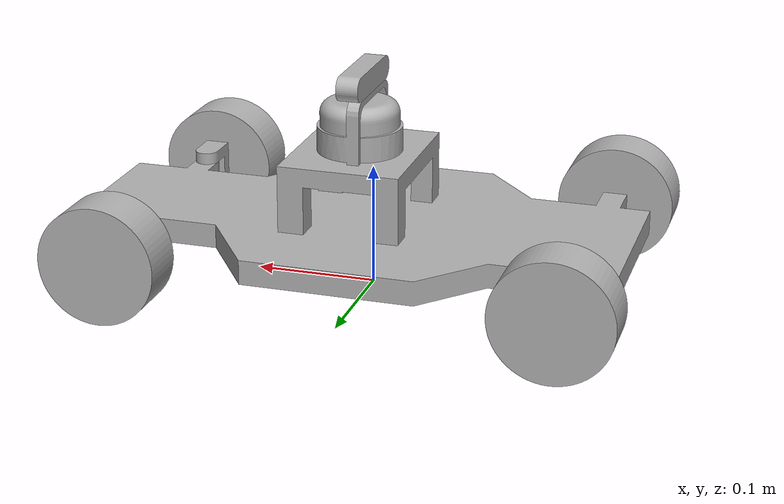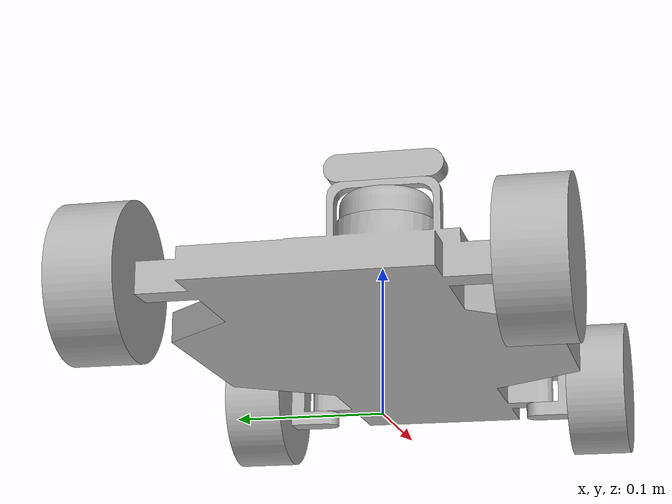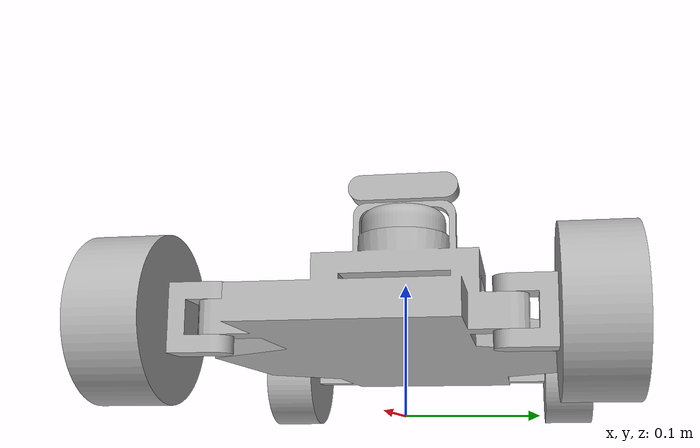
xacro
<?xml version="1.0" ?>
<robot name="mxcarkit" xmlns:xacro="http://www.ros.org/wiki/xacro">

<xacro:include filename="$(find mxcarkit_description)/urdf/materials.xacro" />
<xacro:include filename="$(find mxcarkit_description)/urdf/mxcarkit.trans" />
<xacro:include filename="$(find mxcarkit_description)/urdf/mxcarkit.gazebo" />

<link name="base_footprint"/>

<joint name="footprint_joint" type="fixed">
  <parent link="base_footprint"/>
  <child link="base_link"/>
</joint>

<link name="base_link">
  <inertial>
    <origin xyz="0.0015961496453554915 0.0 0.058207406556949434" rpy="0 0 0"/>
    <mass value="2.1464476957000236"/>
    <inertia ixx="0.008079" iyy="0.026184" izz="0.031905" ixy="0.0" iyz="0.0" ixz="-0.000205"/>
  </inertial>
  <visual>
    <origin xyz="0 0 0" rpy="0 0 0"/>
    <geometry>
      <mesh filename="package://mxcarkit_description/meshes/base_link.stl" scale="0.001 0.001 0.001"/>
    </geometry>
    <material name="silver"/>
  </visual>
  <collision>
    <origin xyz="0 0 0" rpy="0 0 0"/>
    <geometry>
      <mesh filename="package://mxcarkit_description/meshes/base_link.stl" scale="0.001 0.001 0.001"/>
    </geometry>
  </collision>
</link>

<link name="right_rear_wheel_1">
  <inertial>
    <origin xyz="0.0 -0.020999999999999977 6.938893903907228e-18" rpy="0 0 0"/>
    <mass value="0.28864603013602147"/>
    <inertia ixx="0.000212" iyy="0.000339" izz="0.000212" ixy="-0.0" iyz="0.0" ixz="-0.0"/>
  </inertial>
  <visual>
    <origin xyz="0.18 0.108 -0.0485" rpy="0 0 0"/>
    <geometry>
      <mesh filename="package://mxcarkit_description/meshes/right_rear_wheel_1.stl" scale="0.001 0.001 0.001"/>
    </geometry>
    <material name="silver"/>
  </visual>
  <collision>
    <origin xyz="0.18 0.108 -0.0485" rpy="0 0 0"/>
    <geometry>
      <mesh filename="package://mxcarkit_description/meshes/right_rear_wheel_1.stl" scale="0.001 0.001 0.001"/>
    </geometry>
  </collision>
</link>

<link name="left_rear_wheel_1">
  <inertial>
    <origin xyz="0.0 0.021000000000000033 6.938893903907228e-18" rpy="0 0 0"/>
    <mass value="0.28864603013602147"/>
    <inertia ixx="0.000212" iyy="0.000339" izz="0.000212" ixy="-0.0" iyz="0.0" ixz="-0.0"/>
  </inertial>
  <visual>
    <origin xyz="0.18 -0.108 -0.0485" rpy="0 0 0"/>
    <geometry>
      <mesh filename="package://mxcarkit_description/meshes/left_rear_wheel_1.stl" scale="0.001 0.001 0.001"/>
    </geometry>
    <material name="silver"/>
  </visual>
  <collision>
    <origin xyz="0.18 -0.108 -0.0485" rpy="0 0 0"/>
    <geometry>
      <mesh filename="package://mxcarkit_description/meshes/left_rear_wheel_1.stl" scale="0.001 0.001 0.001"/>
    </geometry>
  </collision>
</link>

<link name="right_steer_link_1">
  <inertial>
    <origin xyz="0.0 -0.01118138031512074 -0.010000000000000009" rpy="0 0 0"/>
    <mass value="0.018170088212805177"/>
    <inertia ixx="5e-06" iyy="4e-06" izz="2e-06" ixy="-0.0" iyz="-0.0" ixz="0.0"/>
  </inertial>
  <visual>
    <origin xyz="-0.18 0.083 -0.0585" rpy="0 0 0"/>
    <geometry>
      <mesh filename="package://mxcarkit_description/meshes/right_steer_link_1.stl" scale="0.001 0.001 0.001"/>
    </geometry>
    <material name="silver"/>
  </visual>
  <collision>
    <origin xyz="-0.18 0.083 -0.0585" rpy="0 0 0"/>
    <geometry>
      <mesh filename="package://mxcarkit_description/meshes/right_steer_link_1.stl" scale="0.001 0.001 0.001"/>
    </geometry>
  </collision>
</link>

<link name="left_steer_link_1">
  <inertial>
    <origin xyz="0.0 0.011181380315120712 -0.010000000000000009" rpy="0 0 0"/>
    <mass value="0.018170088212805177"/>
    <inertia ixx="5e-06" iyy="4e-06" izz="2e-06" ixy="0.0" iyz="0.0" ixz="0.0"/>
  </inertial>
  <visual>
    <origin xyz="-0.18 -0.083 -0.0585" rpy="0 0 0"/>
    <geometry>
      <mesh filename="package://mxcarkit_description/meshes/left_steer_link_1.stl" scale="0.001 0.001 0.001"/>
    </geometry>
    <material name="silver"/>
  </visual>
  <collision>
    <origin xyz="-0.18 -0.083 -0.0585" rpy="0 0 0"/>
    <geometry>
      <mesh filename="package://mxcarkit_description/meshes/left_steer_link_1.stl" scale="0.001 0.001 0.001"/>
    </geometry>
  </collision>
</link>

<link name="right_front_wheel_1">
  <inertial>
    <origin xyz="0.0 -0.021000000000000005 6.938893903907228e-18" rpy="0 0 0"/>
    <mass value="0.28864603013602136"/>
    <inertia ixx="0.000212" iyy="0.000339" izz="0.000212" ixy="0.0" iyz="0.0" ixz="0.0"/>
  </inertial>
  <visual>
    <origin xyz="-0.18 0.108 -0.0485" rpy="0 0 0"/>
    <geometry>
      <mesh filename="package://mxcarkit_description/meshes/right_front_wheel_1.stl" scale="0.001 0.001 0.001"/>
    </geometry>
    <material name="silver"/>
  </visual>
  <collision>
    <origin xyz="-0.18 0.108 -0.0485" rpy="0 0 0"/>
    <geometry>
      <mesh filename="package://mxcarkit_description/meshes/right_front_wheel_1.stl" scale="0.001 0.001 0.001"/>
    </geometry>
  </collision>
</link>

<link name="left_front_wheel_1">
  <inertial>
    <origin xyz="0.0 0.021000000000000005 6.938893903907228e-18" rpy="0 0 0"/>
    <mass value="0.28864603013602136"/>
    <inertia ixx="0.000212" iyy="0.000339" izz="0.000212" ixy="0.0" iyz="0.0" ixz="0.0"/>
  </inertial>
  <visual>
    <origin xyz="-0.18 -0.108 -0.0485" rpy="0 0 0"/>
    <geometry>
      <mesh filename="package://mxcarkit_description/meshes/left_front_wheel_1.stl" scale="0.001 0.001 0.001"/>
    </geometry>
    <material name="silver"/>
  </visual>
  <collision>
    <origin xyz="-0.18 -0.108 -0.0485" rpy="0 0 0"/>
    <geometry>
      <mesh filename="package://mxcarkit_description/meshes/left_front_wheel_1.stl" scale="0.001 0.001 0.001"/>
    </geometry>
  </collision>
</link>

<link name="lidar_link_1">
  <inertial>
    <origin xyz="-2.42861286636753e-17 0.0 0.009990019417772611" rpy="0 0 0"/>
    <mass value="0.06953959605669224"/>
    <inertia ixx="2e-05" iyy="2e-05" izz="3.5e-05" ixy="0.0" iyz="0.0" ixz="-0.0"/>
  </inertial>
  <visual>
    <origin xyz="-0.0115 -0.0 -0.135" rpy="0 0 0"/>
    <geometry>
      <mesh filename="package://mxcarkit_description/meshes/lidar_link_1.stl" scale="0.001 0.001 0.001"/>
    </geometry>
    <material name="silver"/>
  </visual>
  <collision>
    <origin xyz="-0.0115 -0.0 -0.135" rpy="0 0 0"/>
    <geometry>
      <mesh filename="package://mxcarkit_description/meshes/lidar_link_1.stl" scale="0.001 0.001 0.001"/>
    </geometry>
  </collision>
</link>

<link name="camera_link_1">
  <inertial>
    <origin xyz="-0.0010000000000000009 -4.8910410860030916e-18 0.010000000000000009" rpy="0 0 0"/>
    <mass value="0.03079815878304933"/>
    <inertia ixx="1.8e-05" iyy="2e-06" izz="1.8e-05" ixy="0.0" iyz="-0.0" ixz="0.0"/>
  </inertial>
  <visual>
    <origin xyz="-0.01 0.0 -0.1645" rpy="0 0 0"/>
    <geometry>
      <mesh filename="package://mxcarkit_description/meshes/camera_link_1.stl" scale="0.001 0.001 0.001"/>
    </geometry>
    <material name="silver"/>
  </visual>
  <collision>
    <origin xyz="-0.01 0.0 -0.1645" rpy="0 0 0"/>
    <geometry>
      <mesh filename="package://mxcarkit_description/meshes/camera_link_1.stl" scale="0.001 0.001 0.001"/>
    </geometry>
  </collision>
</link>

<joint name="rr_wheel_joint" type="continuous">
  <origin xyz="-0.18 -0.108 0.0485" rpy="0 0 0"/>
  <parent link="base_link"/>
  <child link="right_rear_wheel_1"/>
  <axis xyz="0.0 1.0 0.0"/>
</joint>

<joint name="lr_wheel_joint" type="continuous">
  <origin xyz="-0.18 0.108 0.0485" rpy="0 0 0"/>
  <parent link="base_link"/>
  <child link="left_rear_wheel_1"/>
  <axis xyz="0.0 1.0 0.0"/>
</joint>

<joint name="right_steer_joint" type="continuous">
  <origin xyz="0.18 -0.083 0.0585" rpy="0 0 0"/>
  <parent link="base_link"/>
  <child link="right_steer_link_1"/>
  <axis xyz="0.0 0.0 1.0"/>
</joint>

<joint name="left_steer_joint" type="continuous">
  <origin xyz="0.18 0.083 0.0585" rpy="0 0 0"/>
  <parent link="base_link"/>
  <child link="left_steer_link_1"/>
  <axis xyz="0.0 0.0 1.0"/>
</joint>

<joint name="rf_wheel_joint" type="continuous">
  <origin xyz="0.0 -0.025 -0.01" rpy="0 0 0"/>
  <parent link="right_steer_link_1"/>
  <child link="right_front_wheel_1"/>
  <axis xyz="0.0 1.0 0.0"/>
</joint>

<joint name="lf_wheel_joint" type="continuous">
  <origin xyz="0.0 0.025 -0.01" rpy="0 0 0"/>
  <parent link="left_steer_link_1"/>
  <child link="left_front_wheel_1"/>
  <axis xyz="0.0 1.0 0.0"/>
</joint>

<joint name="lidar_joint" type="continuous">
  <origin xyz="0.0115 0.0 0.135" rpy="0 0 0"/>
  <parent link="base_link"/>
  <child link="lidar_link_1"/>
  <axis xyz="0.0 0.0 1.0"/>
</joint>

<joint name="camera_joint" type="fixed">
  <origin xyz="0.01 0.0 0.1645" rpy="0 0 0"/>
  <parent link="base_link"/>
  <child link="camera_link_1"/>
</joint>

</robot>

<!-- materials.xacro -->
<robot name="mxcarkit" xmlns:xacro="http://www.ros.org/wiki/xacro" >

<material name="silver">
  <color rgba="0.700 0.700 0.700 1.000"/>
</material>

</robot>

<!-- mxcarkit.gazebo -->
<robot name="mxcarkit" xmlns:xacro="http://www.ros.org/wiki/xacro" >

<xacro:property name="body_color" value="Gazebo/Silver" />

<gazebo>
  <plugin name="gazebo_ros_control" filename="libgazebo_ros_control.so"/>
  <robotNamespace>/mxcarkit</robotNamespace>
  <robotSimType>gazebo_ros_control/DefaultRobotHWSim</robotSimType>
</gazebo>
<gazebo reference="base_link">
  <material>${body_color}</material>
  <mu1>0.2</mu1>
  <mu2>0.2</mu2>
  <selfCollide>true</selfCollide>
  <gravity>true</gravity>
</gazebo>

<gazebo reference="right_rear_wheel_1">
  <material>${body_color}</material>
  <mu1>1.0</mu1>
  <mu2>1.0</mu2>
  <selfCollide>true</selfCollide>
</gazebo>

<gazebo reference="left_rear_wheel_1">
  <material>${body_color}</material>
  <mu1>1.0</mu1>
  <mu2>1.0</mu2>
  <selfCollide>true</selfCollide>
</gazebo>

<gazebo reference="right_steer_link_1">
  <material>${body_color}</material>
  <mu1>0.2</mu1>
  <mu2>0.2</mu2>
  <selfCollide>true</selfCollide>
</gazebo>

<gazebo reference="left_steer_link_1">
  <material>${body_color}</material>
  <mu1>0.2</mu1>
  <mu2>0.2</mu2>
  <selfCollide>true</selfCollide>
</gazebo>

<gazebo reference="right_front_wheel_1">
  <material>${body_color}</material>
  <mu1>1.0</mu1>
  <mu2>1.0</mu2>
  <selfCollide>true</selfCollide>
</gazebo>

<gazebo reference="left_front_wheel_1">
  <material>${body_color}</material>
  <mu1>1.0</mu1>
  <mu2>1.0</mu2>
  <selfCollide>true</selfCollide>
</gazebo>

<gazebo reference="lidar_link_1">
  <material>${body_color}</material>
  <mu1>0.2</mu1>
  <mu2>0.2</mu2>
  <selfCollide>true</selfCollide>
</gazebo>

<gazebo reference="camera_link_1">
  <material>${body_color}</material>
  <mu1>0.2</mu1>
  <mu2>0.2</mu2>
  <selfCollide>true</selfCollide>
</gazebo>

</robot>
